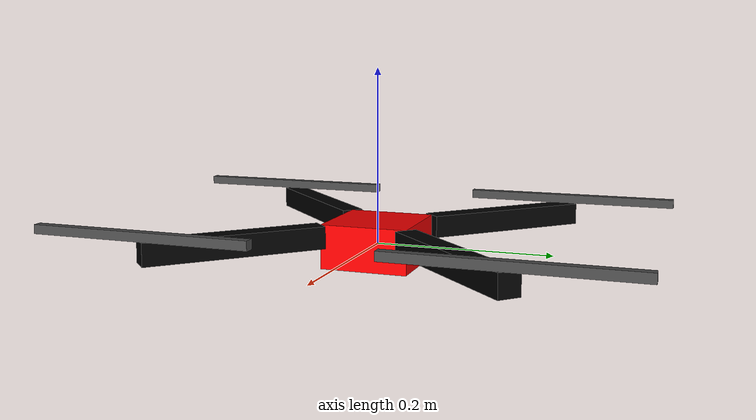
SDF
<?xml version="1.0" encoding="UTF-8"?>
<sdf version='1.7'>
  <model name='test_drone'>
    <pose>0 0 0 0 0 0</pose>
    <self_collide>false</self_collide>
    <static>false</static>
    <link name="base_link">
      <inertial>
        <mass>2.0</mass>
        <inertia>
          <ixx>0.02166666666666667</ixx>
          <ixy>0</ixy>
          <ixz>0</ixz>
          <iyy>0.02166666666666667</iyy>
          <iyz>0</iyz>
          <izz>0.04000000000000001</izz>
        </inertia>
      </inertial>
      <gravity>true</gravity>
      <velocity_decay/>
      <visual name="base_link_visual">
        <pose>0 0 0.0025 0 0 0</pose>
        <geometry>
          <box>
            <size>.1 .1 .050</size>
          </box>
        </geometry>
        <material>
          <diffuse>1 0 0 1</diffuse>
          <ambient>1 0 0 1</ambient>
        </material>
      </visual>
      <visual name="motor_base_0">
        <pose>0.12 -0.12 .015 0 0 -.7853981634</pose>
        <geometry>
          <box>
            <size>.20 .025 .025</size>
          </box>
        </geometry>
        <material>
          <ambient>0 0 0 1</ambient>
        </material>
      </visual>
      <visual name="motor_base_1">
        <pose>-0.12 0.12 .015 0 0 -.7853981634</pose>
        <geometry>
          <box>
            <size>.20 .025 .025</size>
          </box>
        </geometry>
        <material>
          <ambient>0 0 0 1</ambient>
        </material>
      </visual>
      <visual name="motor_base_2">
        <pose>0.12 0.12 .015 0 0 .7853981634</pose>
        <geometry>
          <box>
            <size>.20 .025 .025</size>
          </box>
        </geometry>
        <material>
          <ambient>0 0 0 1</ambient>
        </material>
      </visual>
      <visual name="motor_base_3">
        <pose>-0.12 -0.12 .015 0 0 .7853981634</pose>
        <geometry>
          <box>
            <size>0.20 .025 .025</size>
          </box>
        </geometry>
        <material>
          <ambient>0 0 0 1</ambient>
        </material>
      </visual>
      <collision name="base_link_collision_0">
        <pose>0 0 .007 0 0 0</pose>
        <geometry>
          <box>
            <size>0.35355339059327373 0.35355339059327373 0.04</size>
          </box>
        </geometry>
        <surface>
          <contact>
            <ode>
              <min_depth>0.001</min_depth>
              <max_vel>0</max_vel>
            </ode>
          </contact>
          <friction>
            <ode/>
          </friction>
        </surface>
      </collision>
      <sensor name="air_pressure_sensor" type="air_pressure">
        <always_on>1</always_on>
        <update_rate>50</update_rate>
        <air_pressure>
          <pressure>
            <noise type="gaussian">
              <mean>0</mean>
              <stddev>0.01</stddev>
            </noise>
          </pressure>
        </air_pressure>
      </sensor>
      <sensor name="imu_sensor" type="imu">
        <always_on>1</always_on>
        <update_rate>250</update_rate>
        <imu>
          <angular_velocity>
            <x>
              <noise type="gaussian">
                <mean>0</mean>
                <stddev>0.00018665</stddev>
                <dynamic_bias_stddev>3.8785e-05</dynamic_bias_stddev>
                <dynamic_bias_correlation_time>1000</dynamic_bias_correlation_time>
              </noise>
            </x>
            <y>
              <noise type="gaussian">
                <mean>0</mean>
                <stddev>0.00018665</stddev>
                <dynamic_bias_stddev>3.8785e-05</dynamic_bias_stddev>
                <dynamic_bias_correlation_time>1000</dynamic_bias_correlation_time>
              </noise>
            </y>
            <z>
              <noise type="gaussian">
                <mean>0</mean>
                <stddev>0.00018665</stddev>
                <dynamic_bias_stddev>3.8785e-05</dynamic_bias_stddev>
                <dynamic_bias_correlation_time>1000</dynamic_bias_correlation_time>
              </noise>
            </z>
          </angular_velocity>
          <linear_acceleration>
            <x>
              <noise type="gaussian">
                <mean>0</mean>
                <stddev>0.00186</stddev>
                <dynamic_bias_stddev>0.006</dynamic_bias_stddev>
                <dynamic_bias_correlation_time>300</dynamic_bias_correlation_time>
              </noise>
            </x>
            <y>
              <noise type="gaussian">
                <mean>0</mean>
                <stddev>0.00186</stddev>
                <dynamic_bias_stddev>0.006</dynamic_bias_stddev>
                <dynamic_bias_correlation_time>300</dynamic_bias_correlation_time>
              </noise>
            </y>
            <z>
              <noise type="gaussian">
                <mean>0</mean>
                <stddev>0.00186</stddev>
                <dynamic_bias_stddev>0.006</dynamic_bias_stddev>
                <dynamic_bias_correlation_time>300</dynamic_bias_correlation_time>
              </noise>
            </z>
          </linear_acceleration>
        </imu>
      </sensor>
      <sensor name="navsat_sensor" type="navsat">
        <always_on>1</always_on>
        <update_rate>30</update_rate>
      </sensor>
    </link>
    <link name="rotor_0">
      <gravity>true</gravity>
      <self_collide>false</self_collide>
      <velocity_decay/>
      <pose>0.12 -0.12 0 0 0 0</pose>
      <inertial>
          <mass>0.016076923076923075</mass>
          <inertia>
            <ixx>3.8464910483993325e-07</ixx>
            <iyy>2.6115851691700804e-05</iyy>
            <izz>2.649858234714004e-05</izz>
          </inertia>
        </inertial>
      <visual name="rotor_0_visual">
        <pose>0.07071067812 -0.07071067812 0.0325 0 0 0</pose>
        <geometry>
          <box>
            <size>.01 .25 .01</size>
          </box>
        </geometry>
        <material>
          <script>
            <name>Gazebo/DarkGrey</name>
            <uri>file://media/materials/scripts/gazebo.material</uri>
          </script>
        </material>
      </visual>
      <collision name="rotor_0_collision">
        <pose>0.07071067812 -0.07071067812 0.0325 0 0 0</pose>
        <geometry>
          <box>
            <size>.01 .25 .01</size>
          </box>
        </geometry>
        <surface>
          <contact>
            <ode>
              <min_depth>0.001</min_depth>
              <max_vel>0</max_vel>
            </ode>
          </contact>
          <friction>
            <ode/>
          </friction>
        </surface>
      </collision>
    </link>
    <joint name="rotor_0_joint" type="revolute">
      <parent>base_link</parent>
      <child>rotor_0</child>
      <pose>0.07071067812 -0.07071067812 0.0325 0 0 0</pose>
      <axis>
        <xyz>0 0 1</xyz>
        <limit>
          <lower>-1e+16</lower>
          <upper>1e+16</upper>
        </limit>
        <dynamics>
          <spring_reference>0</spring_reference>
          <spring_stiffness>0</spring_stiffness>
        </dynamics>
      </axis>
    </joint>
    <link name="rotor_1">
      <gravity>true</gravity>
      <self_collide>false</self_collide>
      <velocity_decay/>
      <pose>-0.12 0.12 0 0 0 0</pose>
      <inertial>
          <mass>0.016076923076923075</mass>
          <inertia>
            <ixx>3.8464910483993325e-07</ixx>
            <iyy>2.6115851691700804e-05</iyy>
            <izz>2.649858234714004e-05</izz>
          </inertia>
        </inertial>
      <visual name="rotor_1_visual">
        <pose>-0.07071067812 0.07071067812 0.0325 0 0 0</pose>
        <geometry>
          <box>
            <size>.01 .25 .01</size>
          </box>
        </geometry>
        <material>
          <script>
            <name>Gazebo/DarkGrey</name>
            <uri>file://media/materials/scripts/gazebo.material</uri>
          </script>
        </material>
      </visual>
      <collision name="rotor_1_collision">
        <pose>-0.07071067812 0.07071067812 0.0325 0 0 0</pose>
        <geometry>
          <box>
            <size>.01 .25 .01</size>
          </box>
        </geometry>
        <surface>
          <contact>
            <ode>
              <min_depth>0.001</min_depth>
              <max_vel>0</max_vel>
            </ode>
          </contact>
          <friction>
            <ode/>
          </friction>
        </surface>
      </collision>
    </link>
    <joint name="rotor_1_joint" type="revolute">
      <parent>base_link</parent>
      <child>rotor_1</child>
      <pose>-0.07071067812 0.07071067812 0.0325 0 0 0</pose>
      <axis>
        <xyz>0 0 1</xyz>
        <limit>
          <lower>-1e+16</lower>
          <upper>1e+16</upper>
        </limit>
        <dynamics>
          <spring_reference>0</spring_reference>
          <spring_stiffness>0</spring_stiffness>
        </dynamics>
      </axis>
    </joint>
    <link name="rotor_2">
      <gravity>true</gravity>
      <self_collide>false</self_collide>
      <velocity_decay/>
      <pose>0.12 0.12 0 0 0 0</pose>
      <inertial>
          <mass>0.016076923076923075</mass>
          <inertia>
            <ixx>3.8464910483993325e-07</ixx>
            <iyy>2.6115851691700804e-05</iyy>
            <izz>2.649858234714004e-05</izz>
          </inertia>
        </inertial>
      <visual name="rotor_2_visual">
        <pose>0.07071067812 0.07071067812 0.0325 0 0 0</pose>
        <geometry>
          <box>
            <size>.01 .25 .01</size>
          </box>
        </geometry>
        <material>
          <script>
            <name>Gazebo/DarkGrey</name>
            <uri>file://media/materials/scripts/gazebo.material</uri>
          </script>
        </material>
      </visual>
      <collision name="rotor_2_collision">
        <pose>0.07071067812 0.07071067812 0.0325 0 0 0</pose>
        <geometry>
          <box>
            <size>.01 .25 .01</size>
          </box>
        </geometry>
        <surface>
          <contact>
            <ode>
              <min_depth>0.001</min_depth>
              <max_vel>0</max_vel>
            </ode>
          </contact>
          <friction>
            <ode/>
          </friction>
        </surface>
      </collision>
    </link>
    <joint name="rotor_2_joint" type="revolute">
      <parent>base_link</parent>
      <child>rotor_2</child>
      <pose>0.07071067812 0.07071067812 0.0325 0 0 0</pose>
      <axis>
        <xyz>0 0 1</xyz>
        <limit>
          <lower>-1e+16</lower>
          <upper>1e+16</upper>
        </limit>
        <dynamics>
          <spring_reference>0</spring_reference>
          <spring_stiffness>0</spring_stiffness>
        </dynamics>
      </axis>
    </joint>
    <link name="rotor_3">
      <gravity>true</gravity>
      <self_collide>false</self_collide>
      <velocity_decay/>
      <pose>-0.12 -0.12 0 0 0 0</pose>
      <inertial>
          <mass>0.016076923076923075</mass>
          <inertia>
            <ixx>3.8464910483993325e-07</ixx>
            <iyy>2.6115851691700804e-05</iyy>
            <izz>2.649858234714004e-05</izz>
          </inertia>
        </inertial>
      <visual name="rotor_3_visual">
        <pose>-0.07071067812 -0.07071067812 0.0325 0 0 0</pose>
        <geometry>
          <box>
            <size>.01 .25 .01</size>
          </box>
        </geometry>
        <material>
          <script>
            <name>Gazebo/DarkGrey</name>
            <uri>file://media/materials/scripts/gazebo.material</uri>
          </script>
        </material>
      </visual>
      <collision name="rotor_3_collision">
        <pose>-0.07071067812 -0.07071067812 0.0325 0 0 0</pose>
        <geometry>
          <box>
            <size>.01 .25 .01</size>
          </box>
        </geometry>
        <surface>
          <contact>
            <ode>
              <min_depth>0.001</min_depth>
              <max_vel>0</max_vel>
            </ode>
          </contact>
          <friction>
            <ode/>
          </friction>
        </surface>
      </collision>
    </link>
    <joint name="rotor_3_joint" type="revolute">
      <parent>base_link</parent>
      <child>rotor_3</child>
      <pose>-0.07071067812 -0.07071067812 0.0325 0 0 0</pose>
      <axis>
        <xyz>0 0 1</xyz>
        <limit>
          <lower>-1e+16</lower>
          <upper>1e+16</upper>
        </limit>
        <dynamics>
          <spring_reference>0</spring_reference>
          <spring_stiffness>0</spring_stiffness>
        </dynamics>
      </axis>
    </joint>
  </model>
</sdf>
